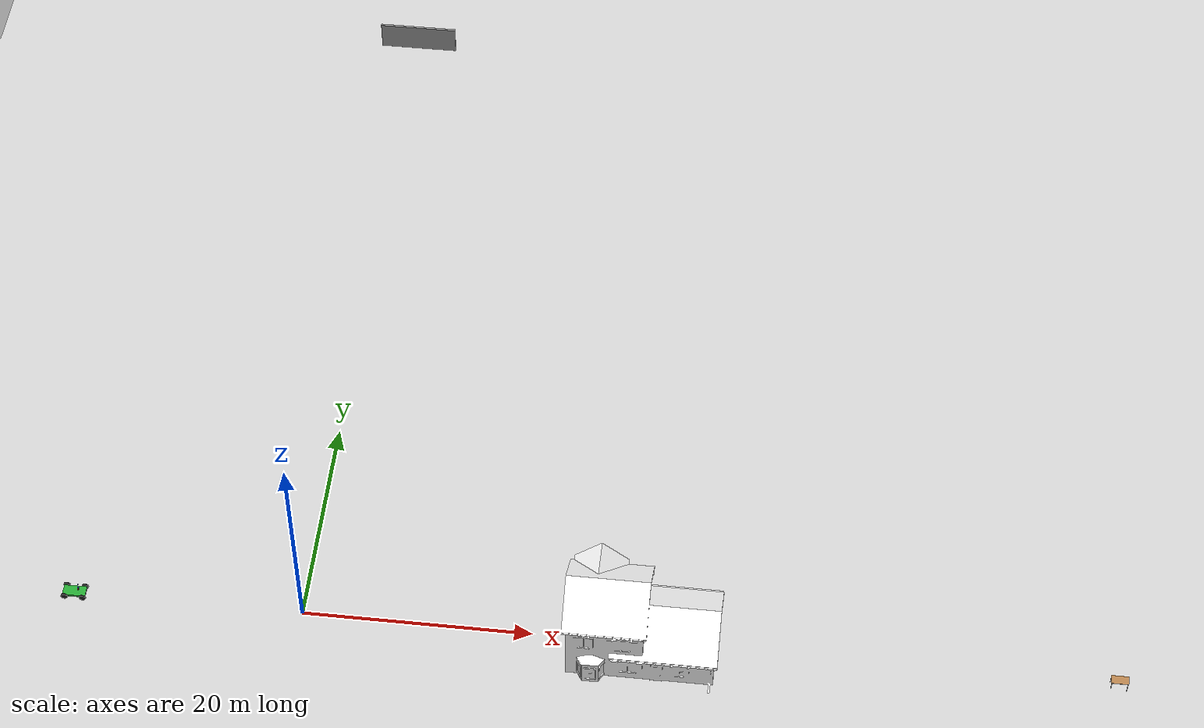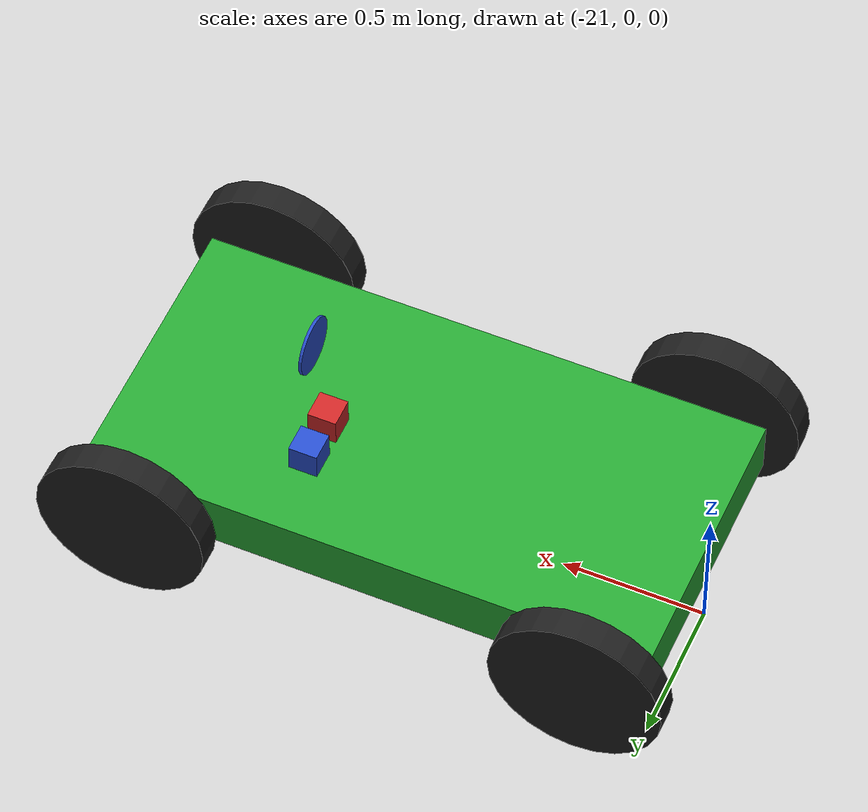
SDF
<sdf version="1.4">
 <world name="default">
  <include><uri>model://sun</uri></include>
  <include><uri>model://ground_plane</uri></include>
  <include><uri>model://house_3</uri><pose>30 0 0 0 0 0</pose></include>
  <include><uri>model://table</uri><pose>70 0 0 0 0 0</pose></include>
  <include><uri>model://utility_cart</uri><pose>-20 0 0 0 0 0</pose></include>
  <include><uri>model://grey_wall</uri><pose>0 70 0 0 0 0</pose></include>
 </world>
</sdf>

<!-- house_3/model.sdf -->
<sdf version="1.5">
  <model name="House 3">
    <static>true</static>
    <link name="link">
      <collision name="collision">
        <geometry>
          <mesh>
            <uri>model://house_3/meshes/house_3.dae</uri>
            <scale>1.5 1.5 1.5</scale>
          </mesh>
        </geometry>
      </collision>
      <visual name="visual">
        <geometry>
          <mesh>
            <uri>model://house_3/meshes/house_3.dae</uri>
            <scale>1.5 1.5 1.5</scale>
          </mesh>
        </geometry>
        <material>
          <diffuse>1.0 1.0 1.0 1.0</diffuse>
          <specular>0.0 0.0 0.0 1.0</specular>
          <pbr>
            <metal>
              <albedo_map>model://house_3/materials/textures/house_3.png</albedo_map>
            </metal>
          </pbr>
        </material>
      </visual>
    </link>
  </model>
</sdf>

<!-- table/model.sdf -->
<sdf version="1.5">
  <model name="table">
    <static>true</static>
    <link name="link">
      <collision name="surface">
        <pose>0 0 1.0 0 0 0</pose>
        <geometry>
          <box>
            <size>1.5 0.8 0.03</size>
          </box>
        </geometry>
        <surface>
          <friction>
            <ode>
              <mu>0.6</mu>
              <mu2>0.6</mu2>
            </ode>
          </friction>
        </surface>
      </collision>
      <visual name="visual1">
        <pose>0 0 1.0 0 0 0</pose>
        <geometry>
          <box>
            <size>1.5 0.8 0.03</size>
          </box>
        </geometry>
        <material>
          <script>
            <uri>model://media/materials/scripts/gazebo.material</uri>
            <name>Gazebo/Wood</name>
          </script>
        </material>
      </visual>
      <collision name="front_left_leg">
        <pose>0.68 0.38 0.5 0 0 0</pose>
        <geometry>
          <cylinder>
            <radius>0.02</radius>
            <length>1.0</length>
          </cylinder>
        </geometry>
      </collision>
      <visual name="front_left_leg">
        <pose>0.68 0.38 0.5 0 0 0</pose>
        <geometry>
          <cylinder>
            <radius>0.02</radius>
            <length>1.0</length>
          </cylinder>
        </geometry>
        <material>
          <script>
            <uri>model://media/materials/scripts/gazebo.material</uri>
            <name>Gazebo/Grey</name>
          </script>
        </material>
      </visual>
      <collision name="front_right_leg">
        <pose>0.68 -0.38 0.5 0 0 0</pose>
        <geometry>
          <cylinder>
            <radius>0.02</radius>
            <length>1.0</length>
          </cylinder>
        </geometry>
      </collision>
      <visual name="front_right_leg">
        <pose>0.68 -0.38 0.5 0 0 0</pose>
        <geometry>
          <cylinder>
            <radius>0.02</radius>
            <length>1.0</length>
          </cylinder>
        </geometry>
        <material>
          <script>
            <uri>model://media/materials/scripts/gazebo.material</uri>
            <name>Gazebo/Grey</name>
          </script>
        </material>
      </visual>
      <collision name="back_right_leg">
        <pose>-0.68 -0.38 0.5 0 0 0</pose>
        <geometry>
          <cylinder>
            <radius>0.02</radius>
            <length>1.0</length>
          </cylinder>
        </geometry>
      </collision>
      <visual name="back_right_leg">
        <pose>-0.68 -0.38 0.5 0 0 0</pose>
        <geometry>
          <cylinder>
            <radius>0.02</radius>
            <length>1.0</length>
          </cylinder>
        </geometry>
        <material>
          <script>
            <uri>model://media/materials/scripts/gazebo.material</uri>
            <name>Gazebo/Grey</name>
          </script>
        </material>
      </visual>
      <collision name="back_left_leg">
        <pose>-0.68 0.38 0.5 0 0 0</pose>
        <geometry>
          <cylinder>
            <radius>0.02</radius>
            <length>1.0</length>
          </cylinder>
        </geometry>
      </collision>
      <visual name="back_left_leg">
        <pose>-0.68 0.38 0.5 0 0 0</pose>
        <geometry>
          <cylinder>
            <radius>0.02</radius>
            <length>1.0</length>
          </cylinder>
        </geometry>
        <material>
          <script>
            <uri>model://media/materials/scripts/gazebo.material</uri>
            <name>Gazebo/Grey</name>
          </script>
        </material>
      </visual>
    </link>
  </model>
</sdf>

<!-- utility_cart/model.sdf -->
<sdf version="1.5">
  <model name="utility_cart">
    <link name="chassis">
      <pose>0 0 0.3 0 0 0</pose>
      <collision name="collision">
        <geometry>
          <box>
            <size>2.0 1.0 0.2</size>
          </box>
        </geometry>
      </collision>
      <visual name="visual">
        <geometry>
          <box>
            <size>2.0 1.0 0.2</size>
          </box>
        </geometry>
        <material>
          <script>
            <uri>file://media/materials/scripts/gazebo.material</uri>
            <name>Gazebo/Green</name>
          </script>
        </material>
      </visual>
    </link>
    <link name="front_left_wheel">
      <pose>0.8 0.6 0.3 0 1.5707 1.5707</pose>
      <collision name="collision">
        <geometry>
          <cylinder>
            <radius>0.3</radius>
            <length>0.1</length>
          </cylinder>
        </geometry>
      </collision>
      <visual name="visual">
        <geometry>
          <cylinder>
            <radius>0.3</radius>
            <length>0.1</length>
          </cylinder>
        </geometry>
        <material>
          <script>
            <uri>file://media/materials/scripts/gazebo.material</uri>
            <name>Gazebo/Black</name>
          </script>
        </material>
      </visual>
    </link>
    <link name="front_right_wheel">
      <pose>0.8 -0.6 0.3 0 1.5707 1.5707</pose>
      <collision name="collision">
        <geometry>
          <cylinder>
            <radius>0.3</radius>
            <length>0.1</length>
          </cylinder>
        </geometry>
      </collision>
      <visual name="visual">
        <geometry>
          <cylinder>
            <radius>0.3</radius>
            <length>0.1</length>
          </cylinder>
        </geometry>
        <material>
          <script>
            <uri>file://media/materials/scripts/gazebo.material</uri>
            <name>Gazebo/Black</name>
          </script>
        </material>
      </visual>
    </link>
    <link name="back_right_wheel">
      <pose>-0.8 -0.6 0.3 0 1.5707 1.5707</pose>
      <collision name="collision">
        <geometry>
          <cylinder>
            <radius>0.3</radius>
            <length>0.1</length>
          </cylinder>
        </geometry>
      </collision>
      <visual name="visual">
        <geometry>
          <cylinder>
            <radius>0.3</radius>
            <length>0.1</length>
          </cylinder>
        </geometry>
        <material>
          <script>
            <uri>file://media/materials/scripts/gazebo.material</uri>
            <name>Gazebo/Black</name>
          </script>
        </material>
      </visual>
    </link>
    <link name="back_left_wheel">
      <pose>-0.8 0.6 0.3 0 1.5707 1.5707</pose>
      <collision name="collision">
        <geometry>
          <cylinder>
            <radius>0.3</radius>
            <length>0.1</length>
          </cylinder>
        </geometry>
      </collision>
      <visual name="visual">
        <geometry>
          <cylinder>
            <radius>0.3</radius>
            <length>0.1</length>
          </cylinder>
        </geometry>
        <material>
          <script>
            <uri>file://media/materials/scripts/gazebo.material</uri>
            <name>Gazebo/Black</name>
          </script>
        </material>
      </visual>
    </link>
    <link name="gas_pedal">
      <pose>0.3 0.1 0.5 0 0 0</pose>
      <collision name="collision">
        <geometry>
          <box>
            <size>0.1 0.1 0.1</size>
          </box>
        </geometry>
      </collision>
      <visual name="visual">
        <geometry>
          <box>
            <size>0.1 0.1 0.1</size>
          </box>
        </geometry>
        <material>
          <script>
            <uri>file://media/materials/scripts/gazebo.material</uri>
            <name>Gazebo/Red</name>
          </script>
        </material>
      </visual>
    </link>
    <link name="brake_pedal">
      <pose>0.3 0.25 0.5 0 0 0</pose>
      <collision name="collision">
        <geometry>
          <box>
            <size>0.1 0.1 0.1</size>
          </box>
        </geometry>
      </collision>
      <visual name="visual">
        <geometry>
          <box>
            <size>0.1 0.1 0.1</size>
          </box>
        </geometry>
        <material>
          <script>
            <uri>file://media/materials/scripts/gazebo.material</uri>
            <name>Gazebo/Blue</name>
          </script>
        </material>
      </visual>
    </link>
    <link name="steering_wheel">
      <pose>0.3 0.2 1.0 0 1.5707 0</pose>
      <collision name="collision">
        <geometry>
          <cylinder>
            <radius>0.1</radius>
            <length>0.01</length>
          </cylinder>
        </geometry>
      </collision>
      <visual name="visual">
        <geometry>
          <cylinder>
            <radius>0.1</radius>
            <length>0.01</length>
          </cylinder>
        </geometry>
        <material>
          <script>
            <uri>file://media/materials/scripts/gazebo.material</uri>
            <name>Gazebo/Blue</name>
          </script>
        </material>
      </visual>
    </link>
    <joint type="prismatic" name="gas_joint">
      <parent>chassis</parent>
      <child>gas_pedal</child>
      <axis>
        <xyz>1 0 0</xyz>
        <limit>
          <lower>0</lower>
          <upper>0.2</upper>
        </limit>
        <use_parent_model_frame>true</use_parent_model_frame>
      </axis>
    </joint>
    <joint type="prismatic" name="brake_joint">
      <parent>chassis</parent>
      <child>brake_pedal</child>
      <axis>
        <xyz>1 0 0</xyz>
        <limit>
          <lower>0</lower>
          <upper>0.2</upper>
        </limit>
        <use_parent_model_frame>true</use_parent_model_frame>
      </axis>
    </joint>
    <joint type="revolute" name="steering_joint">
      <parent>chassis</parent>
      <child>steering_wheel</child>
      <axis>
        <xyz>1 0 0</xyz>
        <limit>
          <lower>-7.853</lower>
          <upper>7.853</upper>
        </limit>
        <use_parent_model_frame>true</use_parent_model_frame>
      </axis>
    </joint>
    <joint type="revolute2" name="front_left_joint">
      <parent>chassis</parent>
      <child>front_left_wheel</child>
      <axis>
        <xyz>0 0 1</xyz>
        <limit>
          <lower>0</lower>
          <upper>0</upper>
        </limit>
        <use_parent_model_frame>true</use_parent_model_frame>
      </axis>
      <axis2>
        <xyz>0 1 0</xyz>
        <use_parent_model_frame>true</use_parent_model_frame>
      </axis2>
      <physics>
        <ode>
          <limit>
            <cfm>0.0</cfm>
            <erp>0.9</erp>
          </limit>
        </ode>
      </physics>
    </joint>
    <joint type="revolute2" name="front_right_joint">
      <parent>chassis</parent>
      <child>front_right_wheel</child>
      <axis>
        <xyz>0 0 1</xyz>
        <limit>
          <lower>0</lower>
          <upper>0</upper>
        </limit>
        <use_parent_model_frame>true</use_parent_model_frame>
      </axis>
      <axis2>
        <xyz>0 1 0</xyz>
        <use_parent_model_frame>true</use_parent_model_frame>
      </axis2>
      <physics>
        <ode>
          <limit>
            <cfm>0.0</cfm>
            <erp>0.9</erp>
          </limit>
        </ode>
      </physics>
    </joint>
    <joint type="revolute2" name="back_right_joint">
      <parent>chassis</parent>
      <child>back_right_wheel</child>
      <axis>
        <xyz>0 0 1</xyz>
        <limit>
          <lower>0</lower>
          <upper>0</upper>
        </limit>
        <use_parent_model_frame>true</use_parent_model_frame>
      </axis>
      <axis2>
        <xyz>0 1 0</xyz>
        <use_parent_model_frame>true</use_parent_model_frame>
      </axis2>
      <physics>
        <ode>
          <limit>
            <cfm>0.0</cfm>
            <erp>0.9</erp>
          </limit>
        </ode>
      </physics>
    </joint>
    <joint type="revolute2" name="back_left_joint">
      <parent>chassis</parent>
      <child>back_left_wheel</child>
      <axis>
        <xyz>0 0 1</xyz>
        <limit>
          <lower>0</lower>
          <upper>0</upper>
        </limit>
        <use_parent_model_frame>true</use_parent_model_frame>
      </axis>
      <axis2>
        <xyz>0 1 0</xyz>
        <use_parent_model_frame>true</use_parent_model_frame>
      </axis2>
      <physics>
        <ode>
          <limit>
            <cfm>0.0</cfm>
            <erp>0.9</erp>
          </limit>
        </ode>
      </physics>
    </joint>
    <plugin filename="libVehiclePlugin.so" name="vehicle">
      <!-- Joints for each wheel -->
      <front_left>front_left_joint</front_left>
      <front_right>front_right_joint</front_right>
      <back_left>back_left_joint</back_left>
      <back_right>back_right_joint</back_right>
      <!-- Joint which controls the gas -->
      <gas>gas_joint</gas>
      <!-- Joint which controls the gas -->
      <brake>brake_joint</brake>
      <!-- Joint which controls the steering -->
      <steering>steering_joint</steering>
      <!-- Power is multiplied by "gas" to determine force applied to wheels -->
      <front_power>10</front_power>
      <rear_power>10</rear_power>
      <!-- The angle range the front tires can turn for steering, in radians -->
      <tire_angle_range>0.5</tire_angle_range>
      <!-- Maximum speed for the car in meters/second -->
      <max_speed>10</max_speed>
      <!-- Factor for the down-force applied as the car travels faster -->
      <!-- A larger number increases the down force -->
      <aero_load>0.1</aero_load>
    </plugin>
  </model>
</sdf>

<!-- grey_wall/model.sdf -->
<sdf version="1.5">
  <model name="grey_wall">
    <static>true</static>
    <link name="link">
      <pose>0 0 1.4 0 0 0</pose>
      <collision name="collision">
        <geometry>
          <box>
            <size>7.5 0.2 2.8</size>
          </box>
        </geometry>
      </collision>
      <visual name="visual">
        <cast_shadows>false</cast_shadows>
        <geometry>
          <box>
            <size>7.5 0.2 2.8</size>
          </box>
        </geometry>
        <material>
          <script>
            <uri>model://../model_source/models/grey_wall/materials/scripts</uri>
            <uri>model://../model_source/models/grey_wall/materials/textures</uri>
            <name>vrc/grey_wall</name>
          </script>
        </material>
      </visual>
    </link>
  </model>
</sdf>
